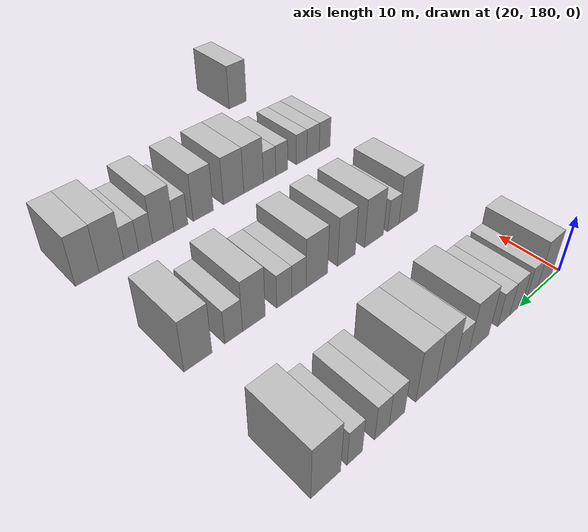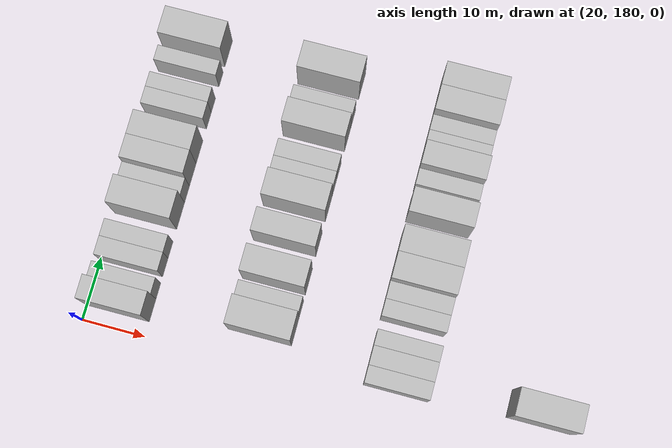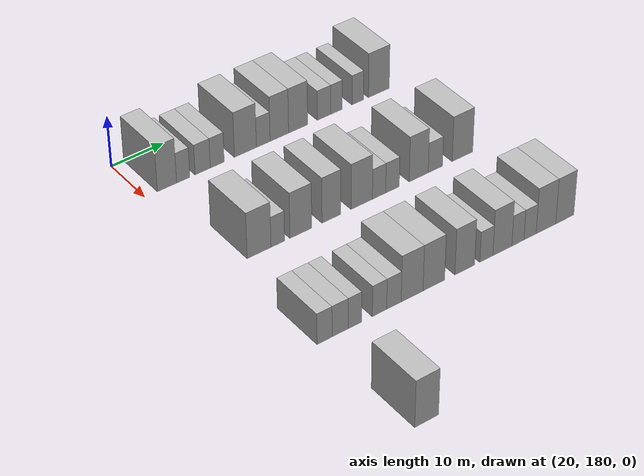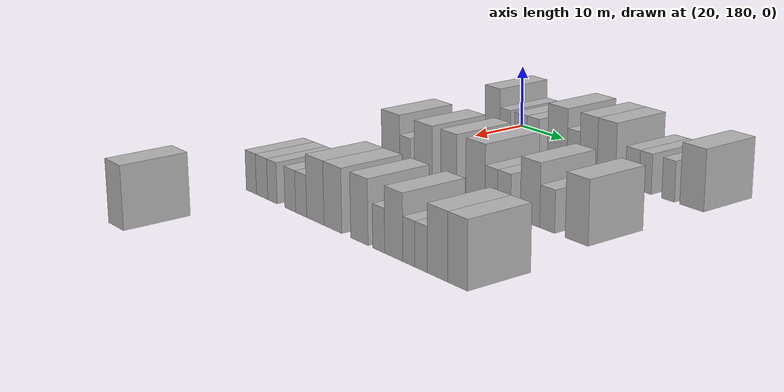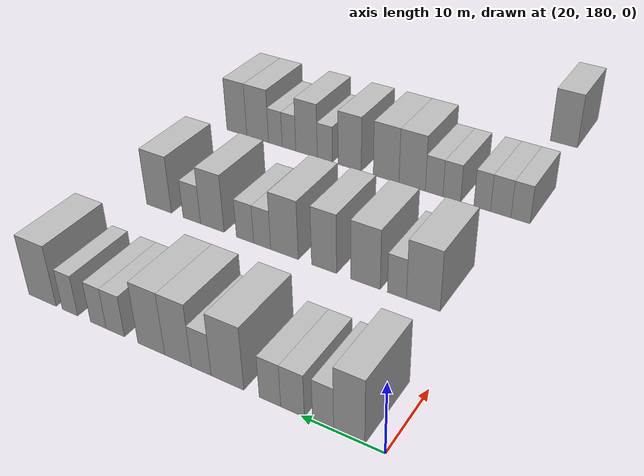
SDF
<sdf version="1.6">
 <world name="default">
  <model name="building_141">
   <static>1</static>
   <pose>25.0000 184.1704 0 0.000000 0.000000 0.000000</pose>
   <link name="link">
    <pose>0 0 4.50 0 0 0</pose>
    <collision name="collision"><geometry><box><size>10.0000 3.6568 9.0000</size></box></geometry></collision>
    <visual name="visual">
     <cast_shadows>0</cast_shadows>
     <geometry><box><size>10.0000 3.6568 9.0000</size></box></geometry>
     <material>
      <script>
       <uri>model://HANNAS_wall/materials/scripts</uri>
       <uri>model://HANNAS_wall/materials/textures</uri>
       <name>vrc/HANNAS_wall</name>
      </script>
     </material>
    </visual>
   </link>
  </model>
  <model name="building_142">
   <static>1</static>
   <pose>25.0000 187.2726 0 0.000000 0.000000 0.000000</pose>
   <link name="link">
    <pose>0 0 3.00 0 0 0</pose>
    <collision name="collision"><geometry><box><size>10.0000 2.5475 6.0000</size></box></geometry></collision>
    <visual name="visual">
     <cast_shadows>0</cast_shadows>
     <geometry><box><size>10.0000 2.5475 6.0000</size></box></geometry>
     <material>
      <script>
       <uri>model://HANNAS_wall/materials/scripts</uri>
       <uri>model://HANNAS_wall/materials/textures</uri>
       <name>vrc/HANNAS_wall</name>
      </script>
     </material>
    </visual>
   </link>
  </model>
  <model name="building_143">
   <static>1</static>
   <pose>25.0000 191.0220 0 0.000000 0.000000 0.000000</pose>
   <link name="link">
    <pose>0 0 3.00 0 0 0</pose>
    <collision name="collision"><geometry><box><size>10.0000 2.9514 6.0000</size></box></geometry></collision>
    <visual name="visual">
     <cast_shadows>0</cast_shadows>
     <geometry><box><size>10.0000 2.9514 6.0000</size></box></geometry>
     <material>
      <script>
       <uri>model://HANNAS_wall/materials/scripts</uri>
       <uri>model://HANNAS_wall/materials/textures</uri>
       <name>vrc/HANNAS_wall</name>
      </script>
     </material>
    </visual>
   </link>
  </model>
  <model name="building_144">
   <static>1</static>
   <pose>25.0000 193.8629 0 0.000000 0.000000 0.000000</pose>
   <link name="link">
    <pose>0 0 3.00 0 0 0</pose>
    <collision name="collision"><geometry><box><size>10.0000 2.7303 6.0000</size></box></geometry></collision>
    <visual name="visual">
     <cast_shadows>0</cast_shadows>
     <geometry><box><size>10.0000 2.7303 6.0000</size></box></geometry>
     <material>
      <script>
       <uri>model://HANNAS_wall/materials/scripts</uri>
       <uri>model://HANNAS_wall/materials/textures</uri>
       <name>vrc/HANNAS_wall</name>
      </script>
     </material>
    </visual>
   </link>
  </model>
  <model name="building_145">
   <static>1</static>
   <pose>25.0000 199.4103 0 0.000000 0.000000 0.000000</pose>
   <link name="link">
    <pose>0 0 4.50 0 0 0</pose>
    <collision name="collision"><geometry><box><size>10.0000 4.3644 9.0000</size></box></geometry></collision>
    <visual name="visual">
     <cast_shadows>0</cast_shadows>
     <geometry><box><size>10.0000 4.3644 9.0000</size></box></geometry>
     <material>
      <script>
       <uri>model://HANNAS_wall/materials/scripts</uri>
       <uri>model://HANNAS_wall/materials/textures</uri>
       <name>vrc/HANNAS_wall</name>
      </script>
     </material>
    </visual>
   </link>
  </model>
  <model name="building_146">
   <static>1</static>
   <pose>25.0000 202.9584 0 0.000000 0.000000 0.000000</pose>
   <link name="link">
    <pose>0 0 3.00 0 0 0</pose>
    <collision name="collision"><geometry><box><size>10.0000 2.7317 6.0000</size></box></geometry></collision>
    <visual name="visual">
     <cast_shadows>0</cast_shadows>
     <geometry><box><size>10.0000 2.7317 6.0000</size></box></geometry>
     <material>
      <script>
       <uri>model://HANNAS_wall/materials/scripts</uri>
       <uri>model://HANNAS_wall/materials/textures</uri>
       <name>vrc/HANNAS_wall</name>
      </script>
     </material>
    </visual>
   </link>
  </model>
  <model name="building_147">
   <static>1</static>
   <pose>25.0000 206.1901 0 0.000000 0.000000 0.000000</pose>
   <link name="link">
    <pose>0 0 4.50 0 0 0</pose>
    <collision name="collision"><geometry><box><size>10.0000 3.7318 9.0000</size></box></geometry></collision>
    <visual name="visual">
     <cast_shadows>0</cast_shadows>
     <geometry><box><size>10.0000 3.7318 9.0000</size></box></geometry>
     <material>
      <script>
       <uri>model://HANNAS_wall/materials/scripts</uri>
       <uri>model://HANNAS_wall/materials/textures</uri>
       <name>vrc/HANNAS_wall</name>
      </script>
     </material>
    </visual>
   </link>
  </model>
  <model name="building_148">
   <static>1</static>
   <pose>25.0000 209.9947 0 0.000000 0.000000 0.000000</pose>
   <link name="link">
    <pose>0 0 4.50 0 0 0</pose>
    <collision name="collision"><geometry><box><size>10.0000 3.8773 9.0000</size></box></geometry></collision>
    <visual name="visual">
     <cast_shadows>0</cast_shadows>
     <geometry><box><size>10.0000 3.8773 9.0000</size></box></geometry>
     <material>
      <script>
       <uri>model://HANNAS_wall/materials/scripts</uri>
       <uri>model://HANNAS_wall/materials/textures</uri>
       <name>vrc/HANNAS_wall</name>
      </script>
     </material>
    </visual>
   </link>
  </model>
  <model name="building_149">
   <static>1</static>
   <pose>25.0000 215.3113 0 0.000000 0.000000 0.000000</pose>
   <link name="link">
    <pose>0 0 3.00 0 0 0</pose>
    <collision name="collision"><geometry><box><size>10.0000 2.7558 6.0000</size></box></geometry></collision>
    <visual name="visual">
     <cast_shadows>0</cast_shadows>
     <geometry><box><size>10.0000 2.7558 6.0000</size></box></geometry>
     <material>
      <script>
       <uri>model://HANNAS_wall/materials/scripts</uri>
       <uri>model://HANNAS_wall/materials/textures</uri>
       <name>vrc/HANNAS_wall</name>
      </script>
     </material>
    </visual>
   </link>
  </model>
  <model name="building_150">
   <static>1</static>
   <pose>25.0000 217.9012 0 0.000000 0.000000 0.000000</pose>
   <link name="link">
    <pose>0 0 3.00 0 0 0</pose>
    <collision name="collision"><geometry><box><size>10.0000 2.4242 6.0000</size></box></geometry></collision>
    <visual name="visual">
     <cast_shadows>0</cast_shadows>
     <geometry><box><size>10.0000 2.4242 6.0000</size></box></geometry>
     <material>
      <script>
       <uri>model://HANNAS_wall/materials/scripts</uri>
       <uri>model://HANNAS_wall/materials/textures</uri>
       <name>vrc/HANNAS_wall</name>
      </script>
     </material>
    </visual>
   </link>
  </model>
  <model name="building_151">
   <static>1</static>
   <pose>25.0000 222.3371 0 0.000000 0.000000 0.000000</pose>
   <link name="link">
    <pose>0 0 3.00 0 0 0</pose>
    <collision name="collision"><geometry><box><size>10.0000 2.4476 6.0000</size></box></geometry></collision>
    <visual name="visual">
     <cast_shadows>0</cast_shadows>
     <geometry><box><size>10.0000 2.4476 6.0000</size></box></geometry>
     <material>
      <script>
       <uri>model://HANNAS_wall/materials/scripts</uri>
       <uri>model://HANNAS_wall/materials/textures</uri>
       <name>vrc/HANNAS_wall</name>
      </script>
     </material>
    </visual>
   </link>
  </model>
  <model name="building_152">
   <static>1</static>
   <pose>25.0000 226.7826 0 0.000000 0.000000 0.000000</pose>
   <link name="link">
    <pose>0 0 4.50 0 0 0</pose>
    <collision name="collision"><geometry><box><size>10.0000 4.4432 9.0000</size></box></geometry></collision>
    <visual name="visual">
     <cast_shadows>0</cast_shadows>
     <geometry><box><size>10.0000 4.4432 9.0000</size></box></geometry>
     <material>
      <script>
       <uri>model://HANNAS_wall/materials/scripts</uri>
       <uri>model://HANNAS_wall/materials/textures</uri>
       <name>vrc/HANNAS_wall</name>
      </script>
     </material>
    </visual>
   </link>
  </model>
  <model name="building_336">
   <static>1</static>
   <pose>47.0000 186.6456 0 0.000000 0.000000 0.000000</pose>
   <link name="link">
    <pose>0 0 4.50 0 0 0</pose>
    <collision name="collision"><geometry><box><size>10.0000 4.4907 9.0000</size></box></geometry></collision>
    <visual name="visual">
     <cast_shadows>0</cast_shadows>
     <geometry><box><size>10.0000 4.4907 9.0000</size></box></geometry>
     <material>
      <script>
       <uri>model://HANNAS_wall/materials/scripts</uri>
       <uri>model://HANNAS_wall/materials/textures</uri>
       <name>vrc/HANNAS_wall</name>
      </script>
     </material>
    </visual>
   </link>
  </model>
  <model name="building_337">
   <static>1</static>
   <pose>47.0000 190.1841 0 0.000000 0.000000 0.000000</pose>
   <link name="link">
    <pose>0 0 3.00 0 0 0</pose>
    <collision name="collision"><geometry><box><size>10.0000 2.5864 6.0000</size></box></geometry></collision>
    <visual name="visual">
     <cast_shadows>0</cast_shadows>
     <geometry><box><size>10.0000 2.5864 6.0000</size></box></geometry>
     <material>
      <script>
       <uri>model://HANNAS_wall/materials/scripts</uri>
       <uri>model://HANNAS_wall/materials/textures</uri>
       <name>vrc/HANNAS_wall</name>
      </script>
     </material>
    </visual>
   </link>
  </model>
  <model name="building_338">
   <static>1</static>
   <pose>47.0000 194.5684 0 0.000000 0.000000 0.000000</pose>
   <link name="link">
    <pose>0 0 4.50 0 0 0</pose>
    <collision name="collision"><geometry><box><size>10.0000 4.1822 9.0000</size></box></geometry></collision>
    <visual name="visual">
     <cast_shadows>0</cast_shadows>
     <geometry><box><size>10.0000 4.1822 9.0000</size></box></geometry>
     <material>
      <script>
       <uri>model://HANNAS_wall/materials/scripts</uri>
       <uri>model://HANNAS_wall/materials/textures</uri>
       <name>vrc/HANNAS_wall</name>
      </script>
     </material>
    </visual>
   </link>
  </model>
  <model name="building_339">
   <static>1</static>
   <pose>47.0000 200.4982 0 0.000000 0.000000 0.000000</pose>
   <link name="link">
    <pose>0 0 4.50 0 0 0</pose>
    <collision name="collision"><geometry><box><size>10.0000 3.6774 9.0000</size></box></geometry></collision>
    <visual name="visual">
     <cast_shadows>0</cast_shadows>
     <geometry><box><size>10.0000 3.6774 9.0000</size></box></geometry>
     <material>
      <script>
       <uri>model://HANNAS_wall/materials/scripts</uri>
       <uri>model://HANNAS_wall/materials/textures</uri>
       <name>vrc/HANNAS_wall</name>
      </script>
     </material>
    </visual>
   </link>
  </model>
  <model name="building_340">
   <static>1</static>
   <pose>47.0000 206.4493 0 0.000000 0.000000 0.000000</pose>
   <link name="link">
    <pose>0 0 4.50 0 0 0</pose>
    <collision name="collision"><geometry><box><size>10.0000 4.2248 9.0000</size></box></geometry></collision>
    <visual name="visual">
     <cast_shadows>0</cast_shadows>
     <geometry><box><size>10.0000 4.2248 9.0000</size></box></geometry>
     <material>
      <script>
       <uri>model://HANNAS_wall/materials/scripts</uri>
       <uri>model://HANNAS_wall/materials/textures</uri>
       <name>vrc/HANNAS_wall</name>
      </script>
     </material>
    </visual>
   </link>
  </model>
  <model name="building_341">
   <static>1</static>
   <pose>47.0000 209.8967 0 0.000000 0.000000 0.000000</pose>
   <link name="link">
    <pose>0 0 3.00 0 0 0</pose>
    <collision name="collision"><geometry><box><size>10.0000 2.6700 6.0000</size></box></geometry></collision>
    <visual name="visual">
     <cast_shadows>0</cast_shadows>
     <geometry><box><size>10.0000 2.6700 6.0000</size></box></geometry>
     <material>
      <script>
       <uri>model://HANNAS_wall/materials/scripts</uri>
       <uri>model://HANNAS_wall/materials/textures</uri>
       <name>vrc/HANNAS_wall</name>
      </script>
     </material>
    </visual>
   </link>
  </model>
  <model name="building_342">
   <static>1</static>
   <pose>47.0000 212.6028 0 0.000000 0.000000 0.000000</pose>
   <link name="link">
    <pose>0 0 3.00 0 0 0</pose>
    <collision name="collision"><geometry><box><size>10.0000 2.7420 6.0000</size></box></geometry></collision>
    <visual name="visual">
     <cast_shadows>0</cast_shadows>
     <geometry><box><size>10.0000 2.7420 6.0000</size></box></geometry>
     <material>
      <script>
       <uri>model://HANNAS_wall/materials/scripts</uri>
       <uri>model://HANNAS_wall/materials/textures</uri>
       <name>vrc/HANNAS_wall</name>
      </script>
     </material>
    </visual>
   </link>
  </model>
  <model name="building_343">
   <static>1</static>
   <pose>47.0000 217.9217 0 0.000000 0.000000 0.000000</pose>
   <link name="link">
    <pose>0 0 4.50 0 0 0</pose>
    <collision name="collision"><geometry><box><size>10.0000 3.8960 9.0000</size></box></geometry></collision>
    <visual name="visual">
     <cast_shadows>0</cast_shadows>
     <geometry><box><size>10.0000 3.8960 9.0000</size></box></geometry>
     <material>
      <script>
       <uri>model://HANNAS_wall/materials/scripts</uri>
       <uri>model://HANNAS_wall/materials/textures</uri>
       <name>vrc/HANNAS_wall</name>
      </script>
     </material>
    </visual>
   </link>
  </model>
  <model name="building_344">
   <static>1</static>
   <pose>47.0000 221.3405 0 0.000000 0.000000 0.000000</pose>
   <link name="link">
    <pose>0 0 3.00 0 0 0</pose>
    <collision name="collision"><geometry><box><size>10.0000 2.9415 6.0000</size></box></geometry></collision>
    <visual name="visual">
     <cast_shadows>0</cast_shadows>
     <geometry><box><size>10.0000 2.9415 6.0000</size></box></geometry>
     <material>
      <script>
       <uri>model://HANNAS_wall/materials/scripts</uri>
       <uri>model://HANNAS_wall/materials/textures</uri>
       <name>vrc/HANNAS_wall</name>
      </script>
     </material>
    </visual>
   </link>
  </model>
  <model name="building_345">
   <static>1</static>
   <pose>47.0000 226.9701 0 0.000000 0.000000 0.000000</pose>
   <link name="link">
    <pose>0 0 4.50 0 0 0</pose>
    <collision name="collision"><geometry><box><size>10.0000 4.3176 9.0000</size></box></geometry></collision>
    <visual name="visual">
     <cast_shadows>0</cast_shadows>
     <geometry><box><size>10.0000 4.3176 9.0000</size></box></geometry>
     <material>
      <script>
       <uri>model://HANNAS_wall/materials/scripts</uri>
       <uri>model://HANNAS_wall/materials/textures</uri>
       <name>vrc/HANNAS_wall</name>
      </script>
     </material>
    </visual>
   </link>
  </model>
  <model name="building_517">
   <static>1</static>
   <pose>69.0000 182.8936 0 0.000000 0.000000 0.000000</pose>
   <link name="link">
    <pose>0 0 3.00 0 0 0</pose>
    <collision name="collision"><geometry><box><size>10.0000 2.7358 6.0000</size></box></geometry></collision>
    <visual name="visual">
     <cast_shadows>0</cast_shadows>
     <geometry><box><size>10.0000 2.7358 6.0000</size></box></geometry>
     <material>
      <script>
       <uri>model://HANNAS_wall/materials/scripts</uri>
       <uri>model://HANNAS_wall/materials/textures</uri>
       <name>vrc/HANNAS_wall</name>
      </script>
     </material>
    </visual>
   </link>
  </model>
  <model name="building_518">
   <static>1</static>
   <pose>69.0000 185.7553 0 0.000000 0.000000 0.000000</pose>
   <link name="link">
    <pose>0 0 3.00 0 0 0</pose>
    <collision name="collision"><geometry><box><size>10.0000 2.9875 6.0000</size></box></geometry></collision>
    <visual name="visual">
     <cast_shadows>0</cast_shadows>
     <geometry><box><size>10.0000 2.9875 6.0000</size></box></geometry>
     <material>
      <script>
       <uri>model://HANNAS_wall/materials/scripts</uri>
       <uri>model://HANNAS_wall/materials/textures</uri>
       <name>vrc/HANNAS_wall</name>
      </script>
     </material>
    </visual>
   </link>
  </model>
  <model name="building_519">
   <static>1</static>
   <pose>69.0000 188.4842 0 0.000000 0.000000 0.000000</pose>
   <link name="link">
    <pose>0 0 3.00 0 0 0</pose>
    <collision name="collision"><geometry><box><size>10.0000 2.4703 6.0000</size></box></geometry></collision>
    <visual name="visual">
     <cast_shadows>0</cast_shadows>
     <geometry><box><size>10.0000 2.4703 6.0000</size></box></geometry>
     <material>
      <script>
       <uri>model://HANNAS_wall/materials/scripts</uri>
       <uri>model://HANNAS_wall/materials/textures</uri>
       <name>vrc/HANNAS_wall</name>
      </script>
     </material>
    </visual>
   </link>
  </model>
  <model name="building_520">
   <static>1</static>
   <pose>69.0000 193.0669 0 0.000000 0.000000 0.000000</pose>
   <link name="link">
    <pose>0 0 3.00 0 0 0</pose>
    <collision name="collision"><geometry><box><size>10.0000 2.6953 6.0000</size></box></geometry></collision>
    <visual name="visual">
     <cast_shadows>0</cast_shadows>
     <geometry><box><size>10.0000 2.6953 6.0000</size></box></geometry>
     <material>
      <script>
       <uri>model://HANNAS_wall/materials/scripts</uri>
       <uri>model://HANNAS_wall/materials/textures</uri>
       <name>vrc/HANNAS_wall</name>
      </script>
     </material>
    </visual>
   </link>
  </model>
  <model name="building_521">
   <static>1</static>
   <pose>69.0000 195.7864 0 0.000000 0.000000 0.000000</pose>
   <link name="link">
    <pose>0 0 3.00 0 0 0</pose>
    <collision name="collision"><geometry><box><size>10.0000 2.7437 6.0000</size></box></geometry></collision>
    <visual name="visual">
     <cast_shadows>0</cast_shadows>
     <geometry><box><size>10.0000 2.7437 6.0000</size></box></geometry>
     <material>
      <script>
       <uri>model://HANNAS_wall/materials/scripts</uri>
       <uri>model://HANNAS_wall/materials/textures</uri>
       <name>vrc/HANNAS_wall</name>
      </script>
     </material>
    </visual>
   </link>
  </model>
  <model name="building_522">
   <static>1</static>
   <pose>69.0000 199.2477 0 0.000000 0.000000 0.000000</pose>
   <link name="link">
    <pose>0 0 4.50 0 0 0</pose>
    <collision name="collision"><geometry><box><size>10.0000 4.1790 9.0000</size></box></geometry></collision>
    <visual name="visual">
     <cast_shadows>0</cast_shadows>
     <geometry><box><size>10.0000 4.1790 9.0000</size></box></geometry>
     <material>
      <script>
       <uri>model://HANNAS_wall/materials/scripts</uri>
       <uri>model://HANNAS_wall/materials/textures</uri>
       <name>vrc/HANNAS_wall</name>
      </script>
     </material>
    </visual>
   </link>
  </model>
  <model name="building_523">
   <static>1</static>
   <pose>69.0000 203.4249 0 0.000000 0.000000 0.000000</pose>
   <link name="link">
    <pose>0 0 4.50 0 0 0</pose>
    <collision name="collision"><geometry><box><size>10.0000 4.1753 9.0000</size></box></geometry></collision>
    <visual name="visual">
     <cast_shadows>0</cast_shadows>
     <geometry><box><size>10.0000 4.1753 9.0000</size></box></geometry>
     <material>
      <script>
       <uri>model://HANNAS_wall/materials/scripts</uri>
       <uri>model://HANNAS_wall/materials/textures</uri>
       <name>vrc/HANNAS_wall</name>
      </script>
     </material>
    </visual>
   </link>
  </model>
  <model name="building_524">
   <static>1</static>
   <pose>69.0000 209.4584 0 0.000000 0.000000 0.000000</pose>
   <link name="link">
    <pose>0 0 4.50 0 0 0</pose>
    <collision name="collision"><geometry><box><size>10.0000 3.8915 9.0000</size></box></geometry></collision>
    <visual name="visual">
     <cast_shadows>0</cast_shadows>
     <geometry><box><size>10.0000 3.8915 9.0000</size></box></geometry>
     <material>
      <script>
       <uri>model://HANNAS_wall/materials/scripts</uri>
       <uri>model://HANNAS_wall/materials/textures</uri>
       <name>vrc/HANNAS_wall</name>
      </script>
     </material>
    </visual>
   </link>
  </model>
  <model name="building_525">
   <static>1</static>
   <pose>69.0000 213.7039 0 0.000000 0.000000 0.000000</pose>
   <link name="link">
    <pose>0 0 3.00 0 0 0</pose>
    <collision name="collision"><geometry><box><size>10.0000 2.5994 6.0000</size></box></geometry></collision>
    <visual name="visual">
     <cast_shadows>0</cast_shadows>
     <geometry><box><size>10.0000 2.5994 6.0000</size></box></geometry>
     <material>
      <script>
       <uri>model://HANNAS_wall/materials/scripts</uri>
       <uri>model://HANNAS_wall/materials/textures</uri>
       <name>vrc/HANNAS_wall</name>
      </script>
     </material>
    </visual>
   </link>
  </model>
  <model name="building_526">
   <static>1</static>
   <pose>69.0000 216.9091 0 0.000000 0.000000 0.000000</pose>
   <link name="link">
    <pose>0 0 4.50 0 0 0</pose>
    <collision name="collision"><geometry><box><size>10.0000 3.8111 9.0000</size></box></geometry></collision>
    <visual name="visual">
     <cast_shadows>0</cast_shadows>
     <geometry><box><size>10.0000 3.8111 9.0000</size></box></geometry>
     <material>
      <script>
       <uri>model://HANNAS_wall/materials/scripts</uri>
       <uri>model://HANNAS_wall/materials/textures</uri>
       <name>vrc/HANNAS_wall</name>
      </script>
     </material>
    </visual>
   </link>
  </model>
  <model name="building_527">
   <static>1</static>
   <pose>69.0000 220.0441 0 0.000000 0.000000 0.000000</pose>
   <link name="link">
    <pose>0 0 3.00 0 0 0</pose>
    <collision name="collision"><geometry><box><size>10.0000 2.4589 6.0000</size></box></geometry></collision>
    <visual name="visual">
     <cast_shadows>0</cast_shadows>
     <geometry><box><size>10.0000 2.4589 6.0000</size></box></geometry>
     <material>
      <script>
       <uri>model://HANNAS_wall/materials/scripts</uri>
       <uri>model://HANNAS_wall/materials/textures</uri>
       <name>vrc/HANNAS_wall</name>
      </script>
     </material>
    </visual>
   </link>
  </model>
  <model name="building_528">
   <static>1</static>
   <pose>69.0000 222.5112 0 0.000000 0.000000 0.000000</pose>
   <link name="link">
    <pose>0 0 3.00 0 0 0</pose>
    <collision name="collision"><geometry><box><size>10.0000 2.4752 6.0000</size></box></geometry></collision>
    <visual name="visual">
     <cast_shadows>0</cast_shadows>
     <geometry><box><size>10.0000 2.4752 6.0000</size></box></geometry>
     <material>
      <script>
       <uri>model://HANNAS_wall/materials/scripts</uri>
       <uri>model://HANNAS_wall/materials/textures</uri>
       <name>vrc/HANNAS_wall</name>
      </script>
     </material>
    </visual>
   </link>
  </model>
  <model name="building_529">
   <static>1</static>
   <pose>69.0000 225.7637 0 0.000000 0.000000 0.000000</pose>
   <link name="link">
    <pose>0 0 4.50 0 0 0</pose>
    <collision name="collision"><geometry><box><size>10.0000 4.0299 9.0000</size></box></geometry></collision>
    <visual name="visual">
     <cast_shadows>0</cast_shadows>
     <geometry><box><size>10.0000 4.0299 9.0000</size></box></geometry>
     <material>
      <script>
       <uri>model://HANNAS_wall/materials/scripts</uri>
       <uri>model://HANNAS_wall/materials/textures</uri>
       <name>vrc/HANNAS_wall</name>
      </script>
     </material>
    </visual>
   </link>
  </model>
  <model name="building_530">
   <static>1</static>
   <pose>69.0000 229.6582 0 0.000000 0.000000 0.000000</pose>
   <link name="link">
    <pose>0 0 4.50 0 0 0</pose>
    <collision name="collision"><geometry><box><size>10.0000 3.7591 9.0000</size></box></geometry></collision>
    <visual name="visual">
     <cast_shadows>0</cast_shadows>
     <geometry><box><size>10.0000 3.7591 9.0000</size></box></geometry>
     <material>
      <script>
       <uri>model://HANNAS_wall/materials/scripts</uri>
       <uri>model://HANNAS_wall/materials/textures</uri>
       <name>vrc/HANNAS_wall</name>
      </script>
     </material>
    </visual>
   </link>
  </model>
  <model name="building_699">
   <static>1</static>
   <pose>91.0000 184.5085 0 0.000000 0.000000 0.000000</pose>
   <link name="link">
    <pose>0 0 4.50 0 0 0</pose>
    <collision name="collision"><geometry><box><size>10.0000 4.2877 9.0000</size></box></geometry></collision>
    <visual name="visual">
     <cast_shadows>0</cast_shadows>
     <geometry><box><size>10.0000 4.2877 9.0000</size></box></geometry>
     <material>
      <script>
       <uri>model://HANNAS_wall/materials/scripts</uri>
       <uri>model://HANNAS_wall/materials/textures</uri>
       <name>vrc/HANNAS_wall</name>
      </script>
     </material>
    </visual>
   </link>
  </model>
 </world>
</sdf>
